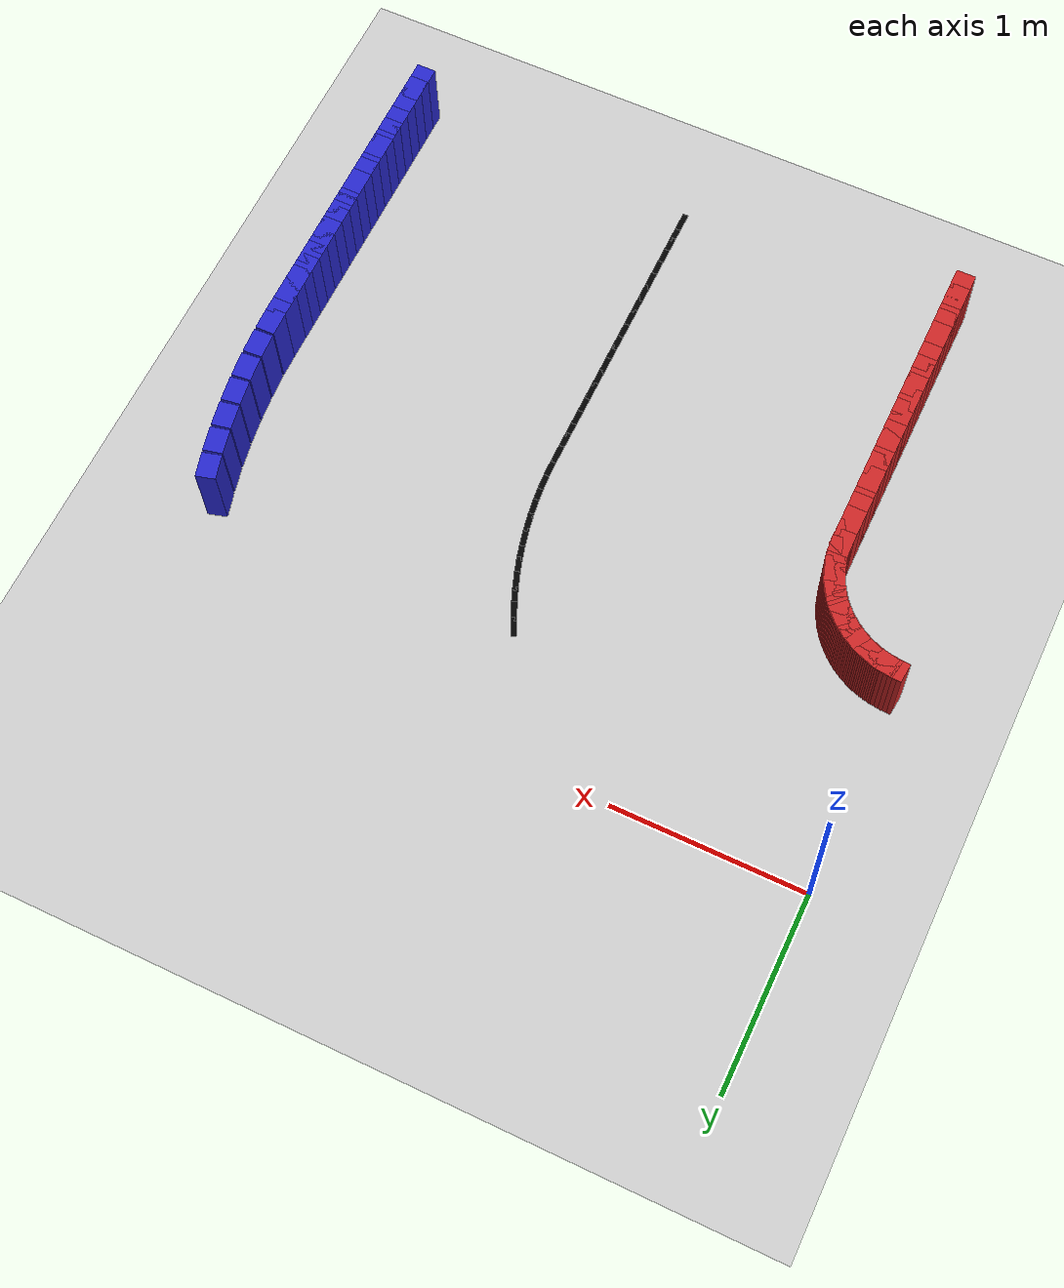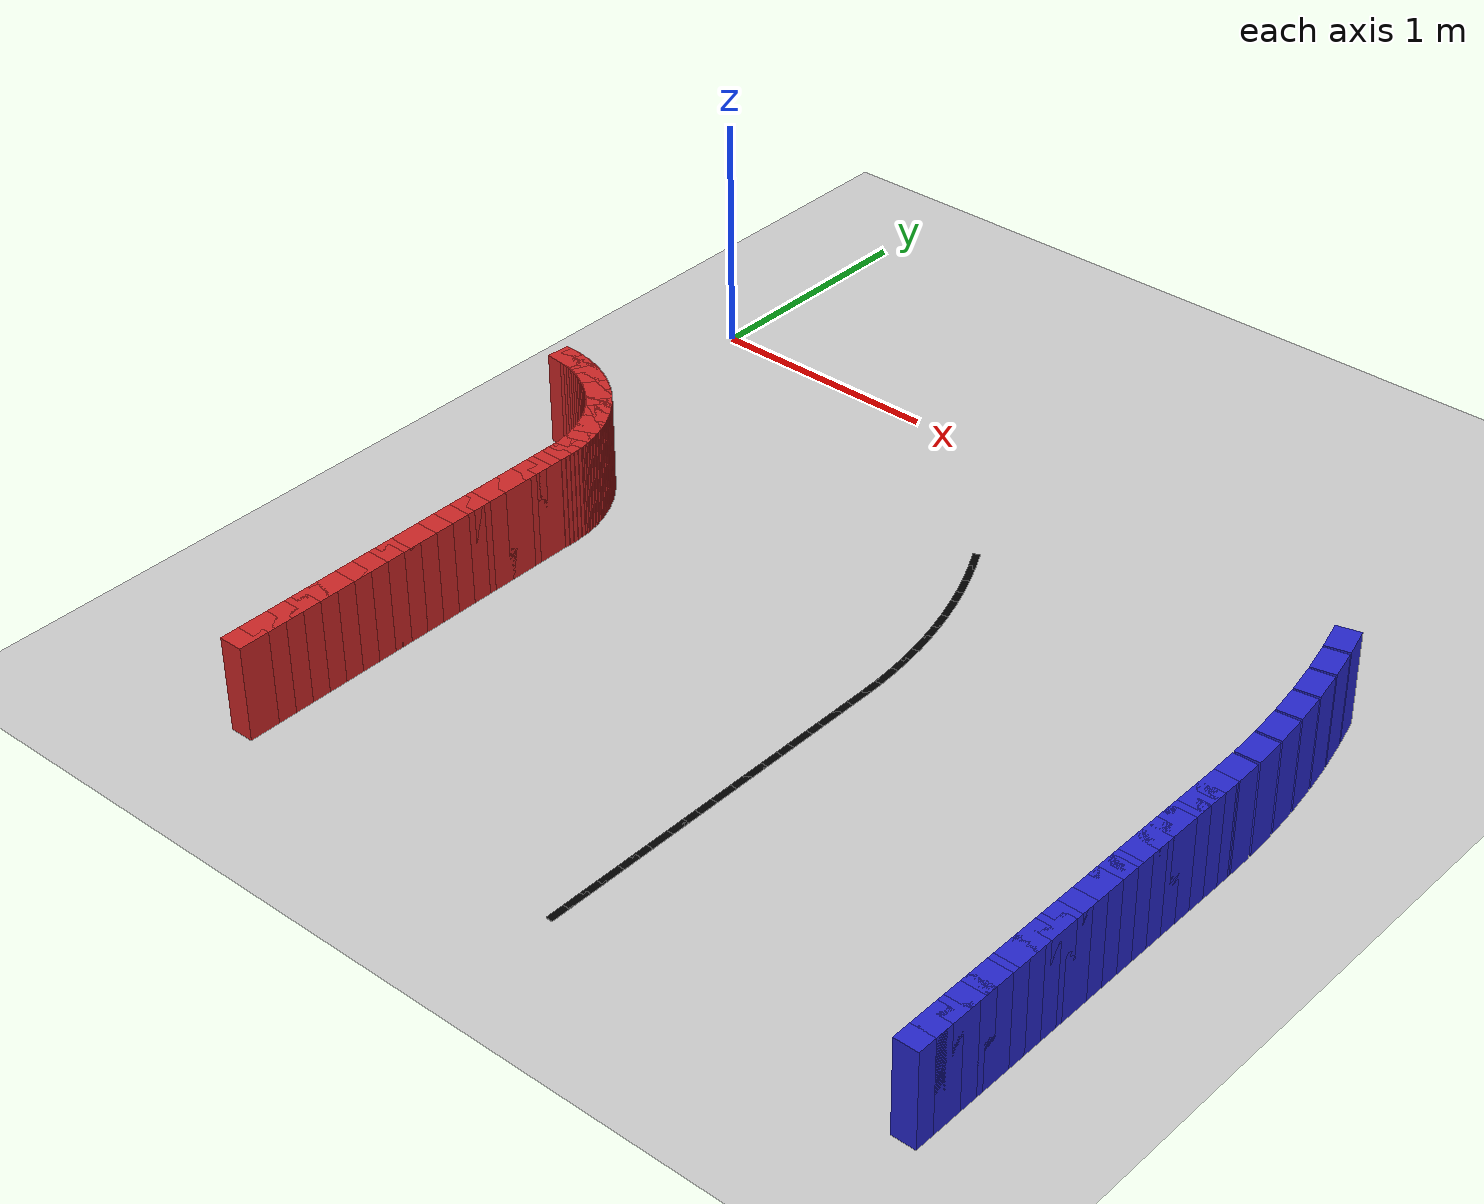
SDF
<sdf version="1.6">
 <world name="new_race_track">
  <include><uri>model://ground_plane</uri></include>
  <include><uri>model://sun</uri></include>
  <model name="iw_255">
   <static>true</static>
   <pose>3.3803 -0.6142 0.200 0 0 -1.3090</pose>
   <link name="l">
    <collision name="c"><geometry><box><size>0.1305 0.1 0.4</size></box></geometry></collision>
    <visual name="v">
     <geometry><box><size>0.1305 0.1 0.4</size></box></geometry>
     <material><ambient>0.15 0.15 0.8 1</ambient><diffuse>0.15 0.15 0.8 1</diffuse></material>
    </visual>
   </link>
  </model>
  <model name="iw_256">
   <static>true</static>
   <pose>3.4141 -0.7511 0.200 0 0 -1.3493</pose>
   <link name="l">
    <collision name="c"><geometry><box><size>0.1305 0.1 0.4</size></box></geometry></collision>
    <visual name="v">
     <geometry><box><size>0.1305 0.1 0.4</size></box></geometry>
     <material><ambient>0.15 0.15 0.8 1</ambient><diffuse>0.15 0.15 0.8 1</diffuse></material>
    </visual>
   </link>
  </model>
  <model name="iw_257">
   <static>true</static>
   <pose>3.4423 -0.8892 0.200 0 0 -1.3896</pose>
   <link name="l">
    <collision name="c"><geometry><box><size>0.1305 0.1 0.4</size></box></geometry></collision>
    <visual name="v">
     <geometry><box><size>0.1305 0.1 0.4</size></box></geometry>
     <material><ambient>0.15 0.15 0.8 1</ambient><diffuse>0.15 0.15 0.8 1</diffuse></material>
    </visual>
   </link>
  </model>
  <model name="iw_258">
   <static>true</static>
   <pose>3.4649 -1.0283 0.200 0 0 -1.4298</pose>
   <link name="l">
    <collision name="c"><geometry><box><size>0.1305 0.1 0.4</size></box></geometry></collision>
    <visual name="v">
     <geometry><box><size>0.1305 0.1 0.4</size></box></geometry>
     <material><ambient>0.15 0.15 0.8 1</ambient><diffuse>0.15 0.15 0.8 1</diffuse></material>
    </visual>
   </link>
  </model>
  <model name="iw_259">
   <static>true</static>
   <pose>3.4819 -1.1682 0.200 0 0 -1.4701</pose>
   <link name="l">
    <collision name="c"><geometry><box><size>0.1305 0.1 0.4</size></box></geometry></collision>
    <visual name="v">
     <geometry><box><size>0.1305 0.1 0.4</size></box></geometry>
     <material><ambient>0.15 0.15 0.8 1</ambient><diffuse>0.15 0.15 0.8 1</diffuse></material>
    </visual>
   </link>
  </model>
  <model name="iw_260">
   <static>true</static>
   <pose>3.4932 -1.3087 0.200 0 0 -1.5104</pose>
   <link name="l">
    <collision name="c"><geometry><box><size>0.1305 0.1 0.4</size></box></geometry></collision>
    <visual name="v">
     <geometry><box><size>0.1305 0.1 0.4</size></box></geometry>
     <material><ambient>0.15 0.15 0.8 1</ambient><diffuse>0.15 0.15 0.8 1</diffuse></material>
    </visual>
   </link>
  </model>
  <model name="iw_261">
   <static>true</static>
   <pose>3.4989 -1.4495 0.200 0 0 -1.5507</pose>
   <link name="l">
    <collision name="c"><geometry><box><size>0.1305 0.1 0.4</size></box></geometry></collision>
    <visual name="v">
     <geometry><box><size>0.1305 0.1 0.4</size></box></geometry>
     <material><ambient>0.15 0.15 0.8 1</ambient><diffuse>0.15 0.15 0.8 1</diffuse></material>
    </visual>
   </link>
  </model>
  <model name="iw_262">
   <static>true</static>
   <pose>3.5000 -1.5600 0.200 0 0 -1.5708</pose>
   <link name="l">
    <collision name="c"><geometry><box><size>0.1300 0.1 0.4</size></box></geometry></collision>
    <visual name="v">
     <geometry><box><size>0.1300 0.1 0.4</size></box></geometry>
     <material><ambient>0.15 0.15 0.8 1</ambient><diffuse>0.15 0.15 0.8 1</diffuse></material>
    </visual>
   </link>
  </model>
  <model name="iw_263">
   <static>true</static>
   <pose>3.5000 -1.6400 0.200 0 0 -1.5708</pose>
   <link name="l">
    <collision name="c"><geometry><box><size>0.1300 0.1 0.4</size></box></geometry></collision>
    <visual name="v">
     <geometry><box><size>0.1300 0.1 0.4</size></box></geometry>
     <material><ambient>0.15 0.15 0.8 1</ambient><diffuse>0.15 0.15 0.8 1</diffuse></material>
    </visual>
   </link>
  </model>
  <model name="iw_264">
   <static>true</static>
   <pose>3.5000 -1.7200 0.200 0 0 -1.5708</pose>
   <link name="l">
    <collision name="c"><geometry><box><size>0.1300 0.1 0.4</size></box></geometry></collision>
    <visual name="v">
     <geometry><box><size>0.1300 0.1 0.4</size></box></geometry>
     <material><ambient>0.15 0.15 0.8 1</ambient><diffuse>0.15 0.15 0.8 1</diffuse></material>
    </visual>
   </link>
  </model>
  <model name="iw_265">
   <static>true</static>
   <pose>3.5000 -1.8000 0.200 0 0 -1.5708</pose>
   <link name="l">
    <collision name="c"><geometry><box><size>0.1300 0.1 0.4</size></box></geometry></collision>
    <visual name="v">
     <geometry><box><size>0.1300 0.1 0.4</size></box></geometry>
     <material><ambient>0.15 0.15 0.8 1</ambient><diffuse>0.15 0.15 0.8 1</diffuse></material>
    </visual>
   </link>
  </model>
  <model name="iw_266">
   <static>true</static>
   <pose>3.5000 -1.8800 0.200 0 0 -1.5708</pose>
   <link name="l">
    <collision name="c"><geometry><box><size>0.1300 0.1 0.4</size></box></geometry></collision>
    <visual name="v">
     <geometry><box><size>0.1300 0.1 0.4</size></box></geometry>
     <material><ambient>0.15 0.15 0.8 1</ambient><diffuse>0.15 0.15 0.8 1</diffuse></material>
    </visual>
   </link>
  </model>
  <model name="iw_267">
   <static>true</static>
   <pose>3.5000 -1.9600 0.200 0 0 -1.5708</pose>
   <link name="l">
    <collision name="c"><geometry><box><size>0.1300 0.1 0.4</size></box></geometry></collision>
    <visual name="v">
     <geometry><box><size>0.1300 0.1 0.4</size></box></geometry>
     <material><ambient>0.15 0.15 0.8 1</ambient><diffuse>0.15 0.15 0.8 1</diffuse></material>
    </visual>
   </link>
  </model>
  <model name="iw_268">
   <static>true</static>
   <pose>3.5000 -2.0400 0.200 0 0 -1.5708</pose>
   <link name="l">
    <collision name="c"><geometry><box><size>0.1300 0.1 0.4</size></box></geometry></collision>
    <visual name="v">
     <geometry><box><size>0.1300 0.1 0.4</size></box></geometry>
     <material><ambient>0.15 0.15 0.8 1</ambient><diffuse>0.15 0.15 0.8 1</diffuse></material>
    </visual>
   </link>
  </model>
  <model name="iw_269">
   <static>true</static>
   <pose>3.5000 -2.1200 0.200 0 0 -1.5708</pose>
   <link name="l">
    <collision name="c"><geometry><box><size>0.1300 0.1 0.4</size></box></geometry></collision>
    <visual name="v">
     <geometry><box><size>0.1300 0.1 0.4</size></box></geometry>
     <material><ambient>0.15 0.15 0.8 1</ambient><diffuse>0.15 0.15 0.8 1</diffuse></material>
    </visual>
   </link>
  </model>
  <model name="iw_270">
   <static>true</static>
   <pose>3.5000 -2.2000 0.200 0 0 -1.5708</pose>
   <link name="l">
    <collision name="c"><geometry><box><size>0.1300 0.1 0.4</size></box></geometry></collision>
    <visual name="v">
     <geometry><box><size>0.1300 0.1 0.4</size></box></geometry>
     <material><ambient>0.15 0.15 0.8 1</ambient><diffuse>0.15 0.15 0.8 1</diffuse></material>
    </visual>
   </link>
  </model>
  <model name="iw_271">
   <static>true</static>
   <pose>3.5000 -2.2800 0.200 0 0 -1.5708</pose>
   <link name="l">
    <collision name="c"><geometry><box><size>0.1300 0.1 0.4</size></box></geometry></collision>
    <visual name="v">
     <geometry><box><size>0.1300 0.1 0.4</size></box></geometry>
     <material><ambient>0.15 0.15 0.8 1</ambient><diffuse>0.15 0.15 0.8 1</diffuse></material>
    </visual>
   </link>
  </model>
  <model name="iw_272">
   <static>true</static>
   <pose>3.5000 -2.3600 0.200 0 0 -1.5708</pose>
   <link name="l">
    <collision name="c"><geometry><box><size>0.1300 0.1 0.4</size></box></geometry></collision>
    <visual name="v">
     <geometry><box><size>0.1300 0.1 0.4</size></box></geometry>
     <material><ambient>0.15 0.15 0.8 1</ambient><diffuse>0.15 0.15 0.8 1</diffuse></material>
    </visual>
   </link>
  </model>
  <model name="iw_273">
   <static>true</static>
   <pose>3.5000 -2.4400 0.200 0 0 -1.5708</pose>
   <link name="l">
    <collision name="c"><geometry><box><size>0.1300 0.1 0.4</size></box></geometry></collision>
    <visual name="v">
     <geometry><box><size>0.1300 0.1 0.4</size></box></geometry>
     <material><ambient>0.15 0.15 0.8 1</ambient><diffuse>0.15 0.15 0.8 1</diffuse></material>
    </visual>
   </link>
  </model>
  <model name="iw_274">
   <static>true</static>
   <pose>3.5000 -2.5200 0.200 0 0 -1.5708</pose>
   <link name="l">
    <collision name="c"><geometry><box><size>0.1300 0.1 0.4</size></box></geometry></collision>
    <visual name="v">
     <geometry><box><size>0.1300 0.1 0.4</size></box></geometry>
     <material><ambient>0.15 0.15 0.8 1</ambient><diffuse>0.15 0.15 0.8 1</diffuse></material>
    </visual>
   </link>
  </model>
  <model name="iw_275">
   <static>true</static>
   <pose>3.5000 -2.6000 0.200 0 0 -1.5708</pose>
   <link name="l">
    <collision name="c"><geometry><box><size>0.1300 0.1 0.4</size></box></geometry></collision>
    <visual name="v">
     <geometry><box><size>0.1300 0.1 0.4</size></box></geometry>
     <material><ambient>0.15 0.15 0.8 1</ambient><diffuse>0.15 0.15 0.8 1</diffuse></material>
    </visual>
   </link>
  </model>
  <model name="iw_276">
   <static>true</static>
   <pose>3.5000 -2.6800 0.200 0 0 -1.5708</pose>
   <link name="l">
    <collision name="c"><geometry><box><size>0.1300 0.1 0.4</size></box></geometry></collision>
    <visual name="v">
     <geometry><box><size>0.1300 0.1 0.4</size></box></geometry>
     <material><ambient>0.15 0.15 0.8 1</ambient><diffuse>0.15 0.15 0.8 1</diffuse></material>
    </visual>
   </link>
  </model>
  <model name="iw_277">
   <static>true</static>
   <pose>3.5000 -2.7600 0.200 0 0 -1.5708</pose>
   <link name="l">
    <collision name="c"><geometry><box><size>0.1300 0.1 0.4</size></box></geometry></collision>
    <visual name="v">
     <geometry><box><size>0.1300 0.1 0.4</size></box></geometry>
     <material><ambient>0.15 0.15 0.8 1</ambient><diffuse>0.15 0.15 0.8 1</diffuse></material>
    </visual>
   </link>
  </model>
  <model name="iw_278">
   <static>true</static>
   <pose>3.5000 -2.8400 0.200 0 0 -1.5708</pose>
   <link name="l">
    <collision name="c"><geometry><box><size>0.1300 0.1 0.4</size></box></geometry></collision>
    <visual name="v">
     <geometry><box><size>0.1300 0.1 0.4</size></box></geometry>
     <material><ambient>0.15 0.15 0.8 1</ambient><diffuse>0.15 0.15 0.8 1</diffuse></material>
    </visual>
   </link>
  </model>
  <model name="iw_279">
   <static>true</static>
   <pose>3.5000 -2.9200 0.200 0 0 -1.5708</pose>
   <link name="l">
    <collision name="c"><geometry><box><size>0.1300 0.1 0.4</size></box></geometry></collision>
    <visual name="v">
     <geometry><box><size>0.1300 0.1 0.4</size></box></geometry>
     <material><ambient>0.15 0.15 0.8 1</ambient><diffuse>0.15 0.15 0.8 1</diffuse></material>
    </visual>
   </link>
  </model>
  <model name="iw_280">
   <static>true</static>
   <pose>3.5000 -3.0000 0.200 0 0 -1.5708</pose>
   <link name="l">
    <collision name="c"><geometry><box><size>0.1300 0.1 0.4</size></box></geometry></collision>
    <visual name="v">
     <geometry><box><size>0.1300 0.1 0.4</size></box></geometry>
     <material><ambient>0.15 0.15 0.8 1</ambient><diffuse>0.15 0.15 0.8 1</diffuse></material>
    </visual>
   </link>
  </model>
  <model name="iw_281">
   <static>true</static>
   <pose>3.5000 -3.0800 0.200 0 0 -1.5708</pose>
   <link name="l">
    <collision name="c"><geometry><box><size>0.1300 0.1 0.4</size></box></geometry></collision>
    <visual name="v">
     <geometry><box><size>0.1300 0.1 0.4</size></box></geometry>
     <material><ambient>0.15 0.15 0.8 1</ambient><diffuse>0.15 0.15 0.8 1</diffuse></material>
    </visual>
   </link>
  </model>
  <model name="ow_225">
   <static>true</static>
   <pose>0.0502 -1.0229 0.200 0 0 -0.1007</pose>
   <link name="l">
    <collision name="c"><geometry><box><size>0.1305 0.1 0.4</size></box></geometry></collision>
    <visual name="v">
     <geometry><box><size>0.1305 0.1 0.4</size></box></geometry>
     <material><ambient>0.8 0.15 0.15 1</ambient><diffuse>0.8 0.15 0.15 1</diffuse></material>
    </visual>
   </link>
  </model>
  <model name="ow_226">
   <static>true</static>
   <pose>0.0702 -1.0254 0.200 0 0 -0.1410</pose>
   <link name="l">
    <collision name="c"><geometry><box><size>0.1305 0.1 0.4</size></box></geometry></collision>
    <visual name="v">
     <geometry><box><size>0.1305 0.1 0.4</size></box></geometry>
     <material><ambient>0.8 0.15 0.15 1</ambient><diffuse>0.8 0.15 0.15 1</diffuse></material>
    </visual>
   </link>
  </model>
  <model name="ow_227">
   <static>true</static>
   <pose>0.0901 -1.0286 0.200 0 0 -0.1812</pose>
   <link name="l">
    <collision name="c"><geometry><box><size>0.1305 0.1 0.4</size></box></geometry></collision>
    <visual name="v">
     <geometry><box><size>0.1305 0.1 0.4</size></box></geometry>
     <material><ambient>0.8 0.15 0.15 1</ambient><diffuse>0.8 0.15 0.15 1</diffuse></material>
    </visual>
   </link>
  </model>
  <model name="ow_228">
   <static>true</static>
   <pose>0.1098 -1.0326 0.200 0 0 -0.2215</pose>
   <link name="l">
    <collision name="c"><geometry><box><size>0.1305 0.1 0.4</size></box></geometry></collision>
    <visual name="v">
     <geometry><box><size>0.1305 0.1 0.4</size></box></geometry>
     <material><ambient>0.8 0.15 0.15 1</ambient><diffuse>0.8 0.15 0.15 1</diffuse></material>
    </visual>
   </link>
  </model>
  <model name="ow_229">
   <static>true</static>
   <pose>0.1293 -1.0374 0.200 0 0 -0.2618</pose>
   <link name="l">
    <collision name="c"><geometry><box><size>0.1305 0.1 0.4</size></box></geometry></collision>
    <visual name="v">
     <geometry><box><size>0.1305 0.1 0.4</size></box></geometry>
     <material><ambient>0.8 0.15 0.15 1</ambient><diffuse>0.8 0.15 0.15 1</diffuse></material>
    </visual>
   </link>
  </model>
  <model name="ow_230">
   <static>true</static>
   <pose>0.1486 -1.0430 0.200 0 0 -0.3021</pose>
   <link name="l">
    <collision name="c"><geometry><box><size>0.1305 0.1 0.4</size></box></geometry></collision>
    <visual name="v">
     <geometry><box><size>0.1305 0.1 0.4</size></box></geometry>
     <material><ambient>0.8 0.15 0.15 1</ambient><diffuse>0.8 0.15 0.15 1</diffuse></material>
    </visual>
   </link>
  </model>
  <model name="ow_231">
   <static>true</static>
   <pose>0.1677 -1.0494 0.200 0 0 -0.3424</pose>
   <link name="l">
    <collision name="c"><geometry><box><size>0.1305 0.1 0.4</size></box></geometry></collision>
    <visual name="v">
     <geometry><box><size>0.1305 0.1 0.4</size></box></geometry>
     <material><ambient>0.8 0.15 0.15 1</ambient><diffuse>0.8 0.15 0.15 1</diffuse></material>
    </visual>
   </link>
  </model>
  <model name="ow_232">
   <static>true</static>
   <pose>0.1865 -1.0565 0.200 0 0 -0.3826</pose>
   <link name="l">
    <collision name="c"><geometry><box><size>0.1305 0.1 0.4</size></box></geometry></collision>
    <visual name="v">
     <geometry><box><size>0.1305 0.1 0.4</size></box></geometry>
     <material><ambient>0.8 0.15 0.15 1</ambient><diffuse>0.8 0.15 0.15 1</diffuse></material>
    </visual>
   </link>
  </model>
  <model name="ow_233">
   <static>true</static>
   <pose>0.2050 -1.0644 0.200 0 0 -0.4229</pose>
   <link name="l">
    <collision name="c"><geometry><box><size>0.1305 0.1 0.4</size></box></geometry></collision>
    <visual name="v">
     <geometry><box><size>0.1305 0.1 0.4</size></box></geometry>
     <material><ambient>0.8 0.15 0.15 1</ambient><diffuse>0.8 0.15 0.15 1</diffuse></material>
    </visual>
   </link>
  </model>
  <model name="ow_234">
   <static>true</static>
   <pose>0.2232 -1.0730 0.200 0 0 -0.4632</pose>
   <link name="l">
    <collision name="c"><geometry><box><size>0.1305 0.1 0.4</size></box></geometry></collision>
    <visual name="v">
     <geometry><box><size>0.1305 0.1 0.4</size></box></geometry>
     <material><ambient>0.8 0.15 0.15 1</ambient><diffuse>0.8 0.15 0.15 1</diffuse></material>
    </visual>
   </link>
  </model>
  <model name="ow_235">
   <static>true</static>
   <pose>0.2410 -1.0824 0.200 0 0 -0.5035</pose>
   <link name="l">
    <collision name="c"><geometry><box><size>0.1305 0.1 0.4</size></box></geometry></collision>
    <visual name="v">
     <geometry><box><size>0.1305 0.1 0.4</size></box></geometry>
     <material><ambient>0.8 0.15 0.15 1</ambient><diffuse>0.8 0.15 0.15 1</diffuse></material>
    </visual>
   </link>
  </model>
  <model name="ow_236">
   <static>true</static>
   <pose>0.2585 -1.0925 0.200 0 0 -0.5437</pose>
   <link name="l">
    <collision name="c"><geometry><box><size>0.1305 0.1 0.4</size></box></geometry></collision>
    <visual name="v">
     <geometry><box><size>0.1305 0.1 0.4</size></box></geometry>
     <material><ambient>0.8 0.15 0.15 1</ambient><diffuse>0.8 0.15 0.15 1</diffuse></material>
    </visual>
   </link>
  </model>
  <model name="ow_237">
   <static>true</static>
   <pose>0.2755 -1.1032 0.200 0 0 -0.5840</pose>
   <link name="l">
    <collision name="c"><geometry><box><size>0.1305 0.1 0.4</size></box></geometry></collision>
    <visual name="v">
     <geometry><box><size>0.1305 0.1 0.4</size></box></geometry>
     <material><ambient>0.8 0.15 0.15 1</ambient><diffuse>0.8 0.15 0.15 1</diffuse></material>
    </visual>
   </link>
  </model>
  <model name="ow_238">
   <static>true</static>
   <pose>0.2920 -1.1146 0.200 0 0 -0.6243</pose>
   <link name="l">
    <collision name="c"><geometry><box><size>0.1305 0.1 0.4</size></box></geometry></collision>
    <visual name="v">
     <geometry><box><size>0.1305 0.1 0.4</size></box></geometry>
     <material><ambient>0.8 0.15 0.15 1</ambient><diffuse>0.8 0.15 0.15 1</diffuse></material>
    </visual>
   </link>
  </model>
  <model name="ow_239">
   <static>true</static>
   <pose>0.3081 -1.1267 0.200 0 0 -0.6646</pose>
   <link name="l">
    <collision name="c"><geometry><box><size>0.1305 0.1 0.4</size></box></geometry></collision>
    <visual name="v">
     <geometry><box><size>0.1305 0.1 0.4</size></box></geometry>
     <material><ambient>0.8 0.15 0.15 1</ambient><diffuse>0.8 0.15 0.15 1</diffuse></material>
    </visual>
   </link>
  </model>
  <model name="ow_240">
   <static>true</static>
   <pose>0.3237 -1.1395 0.200 0 0 -0.7048</pose>
   <link name="l">
    <collision name="c"><geometry><box><size>0.1305 0.1 0.4</size></box></geometry></collision>
    <visual name="v">
     <geometry><box><size>0.1305 0.1 0.4</size></box></geometry>
     <material><ambient>0.8 0.15 0.15 1</ambient><diffuse>0.8 0.15 0.15 1</diffuse></material>
    </visual>
   </link>
  </model>
  <model name="ow_241">
   <static>true</static>
   <pose>0.3388 -1.1528 0.200 0 0 -0.7451</pose>
   <link name="l">
    <collision name="c"><geometry><box><size>0.1305 0.1 0.4</size></box></geometry></collision>
    <visual name="v">
     <geometry><box><size>0.1305 0.1 0.4</size></box></geometry>
     <material><ambient>0.8 0.15 0.15 1</ambient><diffuse>0.8 0.15 0.15 1</diffuse></material>
    </visual>
   </link>
  </model>
  <model name="ow_242">
   <static>true</static>
   <pose>0.3533 -1.1667 0.200 0 0 -0.7854</pose>
   <link name="l">
    <collision name="c"><geometry><box><size>0.1305 0.1 0.4</size></box></geometry></collision>
    <visual name="v">
     <geometry><box><size>0.1305 0.1 0.4</size></box></geometry>
     <material><ambient>0.8 0.15 0.15 1</ambient><diffuse>0.8 0.15 0.15 1</diffuse></material>
    </visual>
   </link>
  </model>
  <model name="ow_243">
   <static>true</static>
   <pose>0.3672 -1.1812 0.200 0 0 -0.8257</pose>
   <link name="l">
    <collision name="c"><geometry><box><size>0.1305 0.1 0.4</size></box></geometry></collision>
    <visual name="v">
     <geometry><box><size>0.1305 0.1 0.4</size></box></geometry>
     <material><ambient>0.8 0.15 0.15 1</ambient><diffuse>0.8 0.15 0.15 1</diffuse></material>
    </visual>
   </link>
  </model>
  <model name="ow_244">
   <static>true</static>
   <pose>0.3805 -1.1963 0.200 0 0 -0.8660</pose>
   <link name="l">
    <collision name="c"><geometry><box><size>0.1305 0.1 0.4</size></box></geometry></collision>
    <visual name="v">
     <geometry><box><size>0.1305 0.1 0.4</size></box></geometry>
     <material><ambient>0.8 0.15 0.15 1</ambient><diffuse>0.8 0.15 0.15 1</diffuse></material>
    </visual>
   </link>
  </model>
  <model name="ow_245">
   <static>true</static>
   <pose>0.3933 -1.2119 0.200 0 0 -0.9062</pose>
   <link name="l">
    <collision name="c"><geometry><box><size>0.1305 0.1 0.4</size></box></geometry></collision>
    <visual name="v">
     <geometry><box><size>0.1305 0.1 0.4</size></box></geometry>
     <material><ambient>0.8 0.15 0.15 1</ambient><diffuse>0.8 0.15 0.15 1</diffuse></material>
    </visual>
   </link>
  </model>
  <model name="ow_246">
   <static>true</static>
   <pose>0.4054 -1.2280 0.200 0 0 -0.9465</pose>
   <link name="l">
    <collision name="c"><geometry><box><size>0.1305 0.1 0.4</size></box></geometry></collision>
    <visual name="v">
     <geometry><box><size>0.1305 0.1 0.4</size></box></geometry>
     <material><ambient>0.8 0.15 0.15 1</ambient><diffuse>0.8 0.15 0.15 1</diffuse></material>
    </visual>
   </link>
  </model>
  <model name="ow_247">
   <static>true</static>
   <pose>0.4168 -1.2445 0.200 0 0 -0.9868</pose>
   <link name="l">
    <collision name="c"><geometry><box><size>0.1305 0.1 0.4</size></box></geometry></collision>
    <visual name="v">
     <geometry><box><size>0.1305 0.1 0.4</size></box></geometry>
     <material><ambient>0.8 0.15 0.15 1</ambient><diffuse>0.8 0.15 0.15 1</diffuse></material>
    </visual>
   </link>
  </model>
  <model name="ow_248">
   <static>true</static>
   <pose>0.4275 -1.2615 0.200 0 0 -1.0271</pose>
   <link name="l">
    <collision name="c"><geometry><box><size>0.1305 0.1 0.4</size></box></geometry></collision>
    <visual name="v">
     <geometry><box><size>0.1305 0.1 0.4</size></box></geometry>
     <material><ambient>0.8 0.15 0.15 1</ambient><diffuse>0.8 0.15 0.15 1</diffuse></material>
    </visual>
   </link>
  </model>
  <model name="ow_249">
   <static>true</static>
   <pose>0.4376 -1.2790 0.200 0 0 -1.0673</pose>
   <link name="l">
    <collision name="c"><geometry><box><size>0.1305 0.1 0.4</size></box></geometry></collision>
    <visual name="v">
     <geometry><box><size>0.1305 0.1 0.4</size></box></geometry>
     <material><ambient>0.8 0.15 0.15 1</ambient><diffuse>0.8 0.15 0.15 1</diffuse></material>
    </visual>
   </link>
  </model>
  <model name="ow_250">
   <static>true</static>
   <pose>0.4470 -1.2968 0.200 0 0 -1.1076</pose>
   <link name="l">
    <collision name="c"><geometry><box><size>0.1305 0.1 0.4</size></box></geometry></collision>
    <visual name="v">
     <geometry><box><size>0.1305 0.1 0.4</size></box></geometry>
     <material><ambient>0.8 0.15 0.15 1</ambient><diffuse>0.8 0.15 0.15 1</diffuse></material>
    </visual>
   </link>
  </model>
  <model name="ow_251">
   <static>true</static>
   <pose>0.4556 -1.3150 0.200 0 0 -1.1479</pose>
   <link name="l">
    <collision name="c"><geometry><box><size>0.1305 0.1 0.4</size></box></geometry></collision>
    <visual name="v">
     <geometry><box><size>0.1305 0.1 0.4</size></box></geometry>
     <material><ambient>0.8 0.15 0.15 1</ambient><diffuse>0.8 0.15 0.15 1</diffuse></material>
    </visual>
   </link>
  </model>
  <model name="ow_252">
   <static>true</static>
   <pose>0.4635 -1.3335 0.200 0 0 -1.1882</pose>
   <link name="l">
    <collision name="c"><geometry><box><size>0.1305 0.1 0.4</size></box></geometry></collision>
    <visual name="v">
     <geometry><box><size>0.1305 0.1 0.4</size></box></geometry>
     <material><ambient>0.8 0.15 0.15 1</ambient><diffuse>0.8 0.15 0.15 1</diffuse></material>
    </visual>
   </link>
  </model>
  <model name="ow_253">
   <static>true</static>
   <pose>0.4706 -1.3523 0.200 0 0 -1.2284</pose>
   <link name="l">
    <collision name="c"><geometry><box><size>0.1305 0.1 0.4</size></box></geometry></collision>
    <visual name="v">
     <geometry><box><size>0.1305 0.1 0.4</size></box></geometry>
     <material><ambient>0.8 0.15 0.15 1</ambient><diffuse>0.8 0.15 0.15 1</diffuse></material>
    </visual>
   </link>
  </model>
  <model name="ow_254">
   <static>true</static>
   <pose>0.4770 -1.3714 0.200 0 0 -1.2687</pose>
   <link name="l">
    <collision name="c"><geometry><box><size>0.1305 0.1 0.4</size></box></geometry></collision>
    <visual name="v">
     <geometry><box><size>0.1305 0.1 0.4</size></box></geometry>
     <material><ambient>0.8 0.15 0.15 1</ambient><diffuse>0.8 0.15 0.15 1</diffuse></material>
    </visual>
   </link>
  </model>
  <model name="ow_255">
   <static>true</static>
   <pose>0.4826 -1.3907 0.200 0 0 -1.3090</pose>
   <link name="l">
    <collision name="c"><geometry><box><size>0.1305 0.1 0.4</size></box></geometry></collision>
    <visual name="v">
     <geometry><box><size>0.1305 0.1 0.4</size></box></geometry>
     <material><ambient>0.8 0.15 0.15 1</ambient><diffuse>0.8 0.15 0.15 1</diffuse></material>
    </visual>
   </link>
  </model>
  <model name="ow_256">
   <static>true</static>
   <pose>0.4874 -1.4102 0.200 0 0 -1.3493</pose>
   <link name="l">
    <collision name="c"><geometry><box><size>0.1305 0.1 0.4</size></box></geometry></collision>
    <visual name="v">
     <geometry><box><size>0.1305 0.1 0.4</size></box></geometry>
     <material><ambient>0.8 0.15 0.15 1</ambient><diffuse>0.8 0.15 0.15 1</diffuse></material>
    </visual>
   </link>
  </model>
  <model name="ow_257">
   <static>true</static>
   <pose>0.4914 -1.4299 0.200 0 0 -1.3896</pose>
   <link name="l">
    <collision name="c"><geometry><box><size>0.1305 0.1 0.4</size></box></geometry></collision>
    <visual name="v">
     <geometry><box><size>0.1305 0.1 0.4</size></box></geometry>
     <material><ambient>0.8 0.15 0.15 1</ambient><diffuse>0.8 0.15 0.15 1</diffuse></material>
    </visual>
   </link>
  </model>
  <model name="ow_258">
   <static>true</static>
   <pose>0.4946 -1.4498 0.200 0 0 -1.4298</pose>
   <link name="l">
    <collision name="c"><geometry><box><size>0.1305 0.1 0.4</size></box></geometry></collision>
    <visual name="v">
     <geometry><box><size>0.1305 0.1 0.4</size></box></geometry>
     <material><ambient>0.8 0.15 0.15 1</ambient><diffuse>0.8 0.15 0.15 1</diffuse></material>
    </visual>
   </link>
  </model>
  <model name="ow_259">
   <static>true</static>
   <pose>0.4971 -1.4698 0.200 0 0 -1.4701</pose>
   <link name="l">
    <collision name="c"><geometry><box><size>0.1305 0.1 0.4</size></box></geometry></collision>
    <visual name="v">
     <geometry><box><size>0.1305 0.1 0.4</size></box></geometry>
     <material><ambient>0.8 0.15 0.15 1</ambient><diffuse>0.8 0.15 0.15 1</diffuse></material>
    </visual>
   </link>
  </model>
  <model name="ow_260">
   <static>true</static>
   <pose>0.4987 -1.4898 0.200 0 0 -1.5104</pose>
   <link name="l">
    <collision name="c"><geometry><box><size>0.1305 0.1 0.4</size></box></geometry></collision>
    <visual name="v">
     <geometry><box><size>0.1305 0.1 0.4</size></box></geometry>
     <material><ambient>0.8 0.15 0.15 1</ambient><diffuse>0.8 0.15 0.15 1</diffuse></material>
    </visual>
   </link>
  </model>
  <model name="ow_261">
   <static>true</static>
   <pose>0.4995 -1.5099 0.200 0 0 -1.5507</pose>
   <link name="l">
    <collision name="c"><geometry><box><size>0.1305 0.1 0.4</size></box></geometry></collision>
    <visual name="v">
     <geometry><box><size>0.1305 0.1 0.4</size></box></geometry>
     <material><ambient>0.8 0.15 0.15 1</ambient><diffuse>0.8 0.15 0.15 1</diffuse></material>
    </visual>
   </link>
  </model>
  <model name="ow_262">
   <static>true</static>
   <pose>0.5000 -1.5600 0.200 0 0 -1.5708</pose>
   <link name="l">
    <collision name="c"><geometry><box><size>0.1300 0.1 0.4</size></box></geometry></collision>
    <visual name="v">
     <geometry><box><size>0.1300 0.1 0.4</size></box></geometry>
     <material><ambient>0.8 0.15 0.15 1</ambient><diffuse>0.8 0.15 0.15 1</diffuse></material>
    </visual>
   </link>
  </model>
  <model name="ow_263">
   <static>true</static>
   <pose>0.5000 -1.6400 0.200 0 0 -1.5708</pose>
   <link name="l">
    <collision name="c"><geometry><box><size>0.1300 0.1 0.4</size></box></geometry></collision>
    <visual name="v">
     <geometry><box><size>0.1300 0.1 0.4</size></box></geometry>
     <material><ambient>0.8 0.15 0.15 1</ambient><diffuse>0.8 0.15 0.15 1</diffuse></material>
    </visual>
   </link>
  </model>
  <model name="ow_264">
   <static>true</static>
   <pose>0.5000 -1.7200 0.200 0 0 -1.5708</pose>
   <link name="l">
    <collision name="c"><geometry><box><size>0.1300 0.1 0.4</size></box></geometry></collision>
    <visual name="v">
     <geometry><box><size>0.1300 0.1 0.4</size></box></geometry>
     <material><ambient>0.8 0.15 0.15 1</ambient><diffuse>0.8 0.15 0.15 1</diffuse></material>
    </visual>
   </link>
  </model>
  <model name="ow_265">
   <static>true</static>
   <pose>0.5000 -1.8000 0.200 0 0 -1.5708</pose>
   <link name="l">
    <collision name="c"><geometry><box><size>0.1300 0.1 0.4</size></box></geometry></collision>
    <visual name="v">
     <geometry><box><size>0.1300 0.1 0.4</size></box></geometry>
     <material><ambient>0.8 0.15 0.15 1</ambient><diffuse>0.8 0.15 0.15 1</diffuse></material>
    </visual>
   </link>
  </model>
  <model name="ow_266">
   <static>true</static>
   <pose>0.5000 -1.8800 0.200 0 0 -1.5708</pose>
   <link name="l">
    <collision name="c"><geometry><box><size>0.1300 0.1 0.4</size></box></geometry></collision>
    <visual name="v">
     <geometry><box><size>0.1300 0.1 0.4</size></box></geometry>
     <material><ambient>0.8 0.15 0.15 1</ambient><diffuse>0.8 0.15 0.15 1</diffuse></material>
    </visual>
   </link>
  </model>
  <model name="ow_267">
   <static>true</static>
   <pose>0.5000 -1.9600 0.200 0 0 -1.5708</pose>
   <link name="l">
    <collision name="c"><geometry><box><size>0.1300 0.1 0.4</size></box></geometry></collision>
    <visual name="v">
     <geometry><box><size>0.1300 0.1 0.4</size></box></geometry>
     <material><ambient>0.8 0.15 0.15 1</ambient><diffuse>0.8 0.15 0.15 1</diffuse></material>
    </visual>
   </link>
  </model>
  <model name="ow_268">
   <static>true</static>
   <pose>0.5000 -2.0400 0.200 0 0 -1.5708</pose>
   <link name="l">
    <collision name="c"><geometry><box><size>0.1300 0.1 0.4</size></box></geometry></collision>
    <visual name="v">
     <geometry><box><size>0.1300 0.1 0.4</size></box></geometry>
     <material><ambient>0.8 0.15 0.15 1</ambient><diffuse>0.8 0.15 0.15 1</diffuse></material>
    </visual>
   </link>
  </model>
  <model name="ow_269">
   <static>true</static>
   <pose>0.5000 -2.1200 0.200 0 0 -1.5708</pose>
   <link name="l">
    <collision name="c"><geometry><box><size>0.1300 0.1 0.4</size></box></geometry></collision>
    <visual name="v">
     <geometry><box><size>0.1300 0.1 0.4</size></box></geometry>
     <material><ambient>0.8 0.15 0.15 1</ambient><diffuse>0.8 0.15 0.15 1</diffuse></material>
    </visual>
   </link>
  </model>
  <model name="ow_270">
   <static>true</static>
   <pose>0.5000 -2.2000 0.200 0 0 -1.5708</pose>
   <link name="l">
    <collision name="c"><geometry><box><size>0.1300 0.1 0.4</size></box></geometry></collision>
    <visual name="v">
     <geometry><box><size>0.1300 0.1 0.4</size></box></geometry>
     <material><ambient>0.8 0.15 0.15 1</ambient><diffuse>0.8 0.15 0.15 1</diffuse></material>
    </visual>
   </link>
  </model>
  <model name="ow_271">
   <static>true</static>
   <pose>0.5000 -2.2800 0.200 0 0 -1.5708</pose>
   <link name="l">
    <collision name="c"><geometry><box><size>0.1300 0.1 0.4</size></box></geometry></collision>
    <visual name="v">
     <geometry><box><size>0.1300 0.1 0.4</size></box></geometry>
     <material><ambient>0.8 0.15 0.15 1</ambient><diffuse>0.8 0.15 0.15 1</diffuse></material>
    </visual>
   </link>
  </model>
  <model name="ow_272">
   <static>true</static>
   <pose>0.5000 -2.3600 0.200 0 0 -1.5708</pose>
   <link name="l">
    <collision name="c"><geometry><box><size>0.1300 0.1 0.4</size></box></geometry></collision>
    <visual name="v">
     <geometry><box><size>0.1300 0.1 0.4</size></box></geometry>
     <material><ambient>0.8 0.15 0.15 1</ambient><diffuse>0.8 0.15 0.15 1</diffuse></material>
    </visual>
   </link>
  </model>
  <model name="ow_273">
   <static>true</static>
   <pose>0.5000 -2.4400 0.200 0 0 -1.5708</pose>
   <link name="l">
    <collision name="c"><geometry><box><size>0.1300 0.1 0.4</size></box></geometry></collision>
    <visual name="v">
     <geometry><box><size>0.1300 0.1 0.4</size></box></geometry>
     <material><ambient>0.8 0.15 0.15 1</ambient><diffuse>0.8 0.15 0.15 1</diffuse></material>
    </visual>
   </link>
  </model>
  <model name="ow_274">
   <static>true</static>
   <pose>0.5000 -2.5200 0.200 0 0 -1.5708</pose>
   <link name="l">
    <collision name="c"><geometry><box><size>0.1300 0.1 0.4</size></box></geometry></collision>
    <visual name="v">
     <geometry><box><size>0.1300 0.1 0.4</size></box></geometry>
     <material><ambient>0.8 0.15 0.15 1</ambient><diffuse>0.8 0.15 0.15 1</diffuse></material>
    </visual>
   </link>
  </model>
  <model name="ow_275">
   <static>true</static>
   <pose>0.5000 -2.6000 0.200 0 0 -1.5708</pose>
   <link name="l">
    <collision name="c"><geometry><box><size>0.1300 0.1 0.4</size></box></geometry></collision>
    <visual name="v">
     <geometry><box><size>0.1300 0.1 0.4</size></box></geometry>
     <material><ambient>0.8 0.15 0.15 1</ambient><diffuse>0.8 0.15 0.15 1</diffuse></material>
    </visual>
   </link>
  </model>
  <model name="ow_276">
   <static>true</static>
   <pose>0.5000 -2.6800 0.200 0 0 -1.5708</pose>
   <link name="l">
    <collision name="c"><geometry><box><size>0.1300 0.1 0.4</size></box></geometry></collision>
    <visual name="v">
     <geometry><box><size>0.1300 0.1 0.4</size></box></geometry>
     <material><ambient>0.8 0.15 0.15 1</ambient><diffuse>0.8 0.15 0.15 1</diffuse></material>
    </visual>
   </link>
  </model>
  <model name="ow_277">
   <static>true</static>
   <pose>0.5000 -2.7600 0.200 0 0 -1.5708</pose>
   <link name="l">
    <collision name="c"><geometry><box><size>0.1300 0.1 0.4</size></box></geometry></collision>
    <visual name="v">
     <geometry><box><size>0.1300 0.1 0.4</size></box></geometry>
     <material><ambient>0.8 0.15 0.15 1</ambient><diffuse>0.8 0.15 0.15 1</diffuse></material>
    </visual>
   </link>
  </model>
  <model name="ow_278">
   <static>true</static>
   <pose>0.5000 -2.8400 0.200 0 0 -1.5708</pose>
   <link name="l">
    <collision name="c"><geometry><box><size>0.1300 0.1 0.4</size></box></geometry></collision>
    <visual name="v">
     <geometry><box><size>0.1300 0.1 0.4</size></box></geometry>
     <material><ambient>0.8 0.15 0.15 1</ambient><diffuse>0.8 0.15 0.15 1</diffuse></material>
    </visual>
   </link>
  </model>
  <model name="ow_279">
   <static>true</static>
   <pose>0.5000 -2.9200 0.200 0 0 -1.5708</pose>
   <link name="l">
    <collision name="c"><geometry><box><size>0.1300 0.1 0.4</size></box></geometry></collision>
    <visual name="v">
     <geometry><box><size>0.1300 0.1 0.4</size></box></geometry>
     <material><ambient>0.8 0.15 0.15 1</ambient><diffuse>0.8 0.15 0.15 1</diffuse></material>
    </visual>
   </link>
  </model>
  <model name="ow_280">
   <static>true</static>
   <pose>0.5000 -3.0000 0.200 0 0 -1.5708</pose>
   <link name="l">
    <collision name="c"><geometry><box><size>0.1300 0.1 0.4</size></box></geometry></collision>
    <visual name="v">
     <geometry><box><size>0.1300 0.1 0.4</size></box></geometry>
     <material><ambient>0.8 0.15 0.15 1</ambient><diffuse>0.8 0.15 0.15 1</diffuse></material>
    </visual>
   </link>
  </model>
  <model name="ow_281">
   <static>true</static>
   <pose>0.5000 -3.0800 0.200 0 0 -1.5708</pose>
   <link name="l">
    <collision name="c"><geometry><box><size>0.1300 0.1 0.4</size></box></geometry></collision>
    <visual name="v">
     <geometry><box><size>0.1300 0.1 0.4</size></box></geometry>
     <material><ambient>0.8 0.15 0.15 1</ambient><diffuse>0.8 0.15 0.15 1</diffuse></material>
    </visual>
   </link>
  </model>
  <model name="line_250">
   <static>true</static>
   <pose>1.7889 -0.6266 0.002 0 0 -1.1076</pose>
   <link name="l">
    <visual name="v">
     <geometry><box><size>0.1005 0.03 0.002</size></box></geometry>
     <material><ambient>0 0 0 1</ambient><diffuse>0 0 0 1</diffuse></material>
    </visual>
   </link>
  </model>
  <model name="line_251">
   <static>true</static>
   <pose>1.8234 -0.6993 0.002 0 0 -1.1479</pose>
   <link name="l">
    <visual name="v">
     <geometry><box><size>0.1005 0.03 0.002</size></box></geometry>
     <material><ambient>0 0 0 1</ambient><diffuse>0 0 0 1</diffuse></material>
    </visual>
   </link>
  </model>
  <model name="line_252">
   <static>true</static>
   <pose>1.8550 -0.7734 0.002 0 0 -1.1882</pose>
   <link name="l">
    <visual name="v">
     <geometry><box><size>0.1005 0.03 0.002</size></box></geometry>
     <material><ambient>0 0 0 1</ambient><diffuse>0 0 0 1</diffuse></material>
    </visual>
   </link>
  </model>
  <model name="line_253">
   <static>true</static>
   <pose>1.8836 -0.8487 0.002 0 0 -1.2284</pose>
   <link name="l">
    <visual name="v">
     <geometry><box><size>0.1005 0.03 0.002</size></box></geometry>
     <material><ambient>0 0 0 1</ambient><diffuse>0 0 0 1</diffuse></material>
    </visual>
   </link>
  </model>
  <model name="line_254">
   <static>true</static>
   <pose>1.9091 -0.9251 0.002 0 0 -1.2687</pose>
   <link name="l">
    <visual name="v">
     <geometry><box><size>0.1005 0.03 0.002</size></box></geometry>
     <material><ambient>0 0 0 1</ambient><diffuse>0 0 0 1</diffuse></material>
    </visual>
   </link>
  </model>
  <model name="line_255">
   <static>true</static>
   <pose>1.9315 -1.0025 0.002 0 0 -1.3090</pose>
   <link name="l">
    <visual name="v">
     <geometry><box><size>0.1005 0.03 0.002</size></box></geometry>
     <material><ambient>0 0 0 1</ambient><diffuse>0 0 0 1</diffuse></material>
    </visual>
   </link>
  </model>
  <model name="line_256">
   <static>true</static>
   <pose>1.9507 -1.0807 0.002 0 0 -1.3493</pose>
   <link name="l">
    <visual name="v">
     <geometry><box><size>0.1005 0.03 0.002</size></box></geometry>
     <material><ambient>0 0 0 1</ambient><diffuse>0 0 0 1</diffuse></material>
    </visual>
   </link>
  </model>
  <model name="line_257">
   <static>true</static>
   <pose>1.9668 -1.1596 0.002 0 0 -1.3896</pose>
   <link name="l">
    <visual name="v">
     <geometry><box><size>0.1005 0.03 0.002</size></box></geometry>
     <material><ambient>0 0 0 1</ambient><diffuse>0 0 0 1</diffuse></material>
    </visual>
   </link>
  </model>
  <model name="line_258">
   <static>true</static>
   <pose>1.9798 -1.2391 0.002 0 0 -1.4298</pose>
   <link name="l">
    <visual name="v">
     <geometry><box><size>0.1005 0.03 0.002</size></box></geometry>
     <material><ambient>0 0 0 1</ambient><diffuse>0 0 0 1</diffuse></material>
    </visual>
   </link>
  </model>
  <model name="line_259">
   <static>true</static>
   <pose>1.9895 -1.3190 0.002 0 0 -1.4701</pose>
   <link name="l">
    <visual name="v">
     <geometry><box><size>0.1005 0.03 0.002</size></box></geometry>
     <material><ambient>0 0 0 1</ambient><diffuse>0 0 0 1</diffuse></material>
    </visual>
   </link>
  </model>
  <model name="line_260">
   <static>true</static>
   <pose>1.9959 -1.3993 0.002 0 0 -1.5104</pose>
   <link name="l">
    <visual name="v">
     <geometry><box><size>0.1005 0.03 0.002</size></box></geometry>
     <material><ambient>0 0 0 1</ambient><diffuse>0 0 0 1</diffuse></material>
    </visual>
   </link>
  </model>
  <model name="line_261">
   <static>true</static>
   <pose>1.9992 -1.4797 0.002 0 0 -1.5507</pose>
   <link name="l">
    <visual name="v">
     <geometry><box><size>0.1005 0.03 0.002</size></box></geometry>
     <material><ambient>0 0 0 1</ambient><diffuse>0 0 0 1</diffuse></material>
    </visual>
   </link>
  </model>
  <model name="line_262">
   <static>true</static>
   <pose>2.0000 -1.5600 0.002 0 0 -1.5708</pose>
   <link name="l">
    <visual name="v">
     <geometry><box><size>0.1000 0.03 0.002</size></box></geometry>
     <material><ambient>0 0 0 1</ambient><diffuse>0 0 0 1</diffuse></material>
    </visual>
   </link>
  </model>
  <model name="line_263">
   <static>true</static>
   <pose>2.0000 -1.6400 0.002 0 0 -1.5708</pose>
   <link name="l">
    <visual name="v">
     <geometry><box><size>0.1000 0.03 0.002</size></box></geometry>
     <material><ambient>0 0 0 1</ambient><diffuse>0 0 0 1</diffuse></material>
    </visual>
   </link>
  </model>
  <model name="line_264">
   <static>true</static>
   <pose>2.0000 -1.7200 0.002 0 0 -1.5708</pose>
   <link name="l">
    <visual name="v">
     <geometry><box><size>0.1000 0.03 0.002</size></box></geometry>
     <material><ambient>0 0 0 1</ambient><diffuse>0 0 0 1</diffuse></material>
    </visual>
   </link>
  </model>
  <model name="line_265">
   <static>true</static>
   <pose>2.0000 -1.8000 0.002 0 0 -1.5708</pose>
   <link name="l">
    <visual name="v">
     <geometry><box><size>0.1000 0.03 0.002</size></box></geometry>
     <material><ambient>0 0 0 1</ambient><diffuse>0 0 0 1</diffuse></material>
    </visual>
   </link>
  </model>
  <model name="line_266">
   <static>true</static>
   <pose>2.0000 -1.8800 0.002 0 0 -1.5708</pose>
   <link name="l">
    <visual name="v">
     <geometry><box><size>0.1000 0.03 0.002</size></box></geometry>
     <material><ambient>0 0 0 1</ambient><diffuse>0 0 0 1</diffuse></material>
    </visual>
   </link>
  </model>
  <model name="line_267">
   <static>true</static>
   <pose>2.0000 -1.9600 0.002 0 0 -1.5708</pose>
   <link name="l">
    <visual name="v">
     <geometry><box><size>0.1000 0.03 0.002</size></box></geometry>
     <material><ambient>0 0 0 1</ambient><diffuse>0 0 0 1</diffuse></material>
    </visual>
   </link>
  </model>
  <model name="line_268">
   <static>true</static>
   <pose>2.0000 -2.0400 0.002 0 0 -1.5708</pose>
   <link name="l">
    <visual name="v">
     <geometry><box><size>0.1000 0.03 0.002</size></box></geometry>
     <material><ambient>0 0 0 1</ambient><diffuse>0 0 0 1</diffuse></material>
    </visual>
   </link>
  </model>
  <model name="line_269">
   <static>true</static>
   <pose>2.0000 -2.1200 0.002 0 0 -1.5708</pose>
   <link name="l">
    <visual name="v">
     <geometry><box><size>0.1000 0.03 0.002</size></box></geometry>
     <material><ambient>0 0 0 1</ambient><diffuse>0 0 0 1</diffuse></material>
    </visual>
   </link>
  </model>
  <model name="line_270">
   <static>true</static>
   <pose>2.0000 -2.2000 0.002 0 0 -1.5708</pose>
   <link name="l">
    <visual name="v">
     <geometry><box><size>0.1000 0.03 0.002</size></box></geometry>
     <material><ambient>0 0 0 1</ambient><diffuse>0 0 0 1</diffuse></material>
    </visual>
   </link>
  </model>
  <model name="line_271">
   <static>true</static>
   <pose>2.0000 -2.2800 0.002 0 0 -1.5708</pose>
   <link name="l">
    <visual name="v">
     <geometry><box><size>0.1000 0.03 0.002</size></box></geometry>
     <material><ambient>0 0 0 1</ambient><diffuse>0 0 0 1</diffuse></material>
    </visual>
   </link>
  </model>
  <model name="line_272">
   <static>true</static>
   <pose>2.0000 -2.3600 0.002 0 0 -1.5708</pose>
   <link name="l">
    <visual name="v">
     <geometry><box><size>0.1000 0.03 0.002</size></box></geometry>
     <material><ambient>0 0 0 1</ambient><diffuse>0 0 0 1</diffuse></material>
    </visual>
   </link>
  </model>
  <model name="line_273">
   <static>true</static>
   <pose>2.0000 -2.4400 0.002 0 0 -1.5708</pose>
   <link name="l">
    <visual name="v">
     <geometry><box><size>0.1000 0.03 0.002</size></box></geometry>
     <material><ambient>0 0 0 1</ambient><diffuse>0 0 0 1</diffuse></material>
    </visual>
   </link>
  </model>
  <model name="line_274">
   <static>true</static>
   <pose>2.0000 -2.5200 0.002 0 0 -1.5708</pose>
   <link name="l">
    <visual name="v">
     <geometry><box><size>0.1000 0.03 0.002</size></box></geometry>
     <material><ambient>0 0 0 1</ambient><diffuse>0 0 0 1</diffuse></material>
    </visual>
   </link>
  </model>
  <model name="line_275">
   <static>true</static>
   <pose>2.0000 -2.6000 0.002 0 0 -1.5708</pose>
   <link name="l">
    <visual name="v">
     <geometry><box><size>0.1000 0.03 0.002</size></box></geometry>
     <material><ambient>0 0 0 1</ambient><diffuse>0 0 0 1</diffuse></material>
    </visual>
   </link>
  </model>
  <model name="line_276">
   <static>true</static>
   <pose>2.0000 -2.6800 0.002 0 0 -1.5708</pose>
   <link name="l">
    <visual name="v">
     <geometry><box><size>0.1000 0.03 0.002</size></box></geometry>
     <material><ambient>0 0 0 1</ambient><diffuse>0 0 0 1</diffuse></material>
    </visual>
   </link>
  </model>
  <model name="line_277">
   <static>true</static>
   <pose>2.0000 -2.7600 0.002 0 0 -1.5708</pose>
   <link name="l">
    <visual name="v">
     <geometry><box><size>0.1000 0.03 0.002</size></box></geometry>
     <material><ambient>0 0 0 1</ambient><diffuse>0 0 0 1</diffuse></material>
    </visual>
   </link>
  </model>
  <model name="line_278">
   <static>true</static>
   <pose>2.0000 -2.8400 0.002 0 0 -1.5708</pose>
   <link name="l">
    <visual name="v">
     <geometry><box><size>0.1000 0.03 0.002</size></box></geometry>
     <material><ambient>0 0 0 1</ambient><diffuse>0 0 0 1</diffuse></material>
    </visual>
   </link>
  </model>
  <model name="line_279">
   <static>true</static>
   <pose>2.0000 -2.9200 0.002 0 0 -1.5708</pose>
   <link name="l">
    <visual name="v">
     <geometry><box><size>0.1000 0.03 0.002</size></box></geometry>
     <material><ambient>0 0 0 1</ambient><diffuse>0 0 0 1</diffuse></material>
    </visual>
   </link>
  </model>
  <model name="line_280">
   <static>true</static>
   <pose>2.0000 -3.0000 0.002 0 0 -1.5708</pose>
   <link name="l">
    <visual name="v">
     <geometry><box><size>0.1000 0.03 0.002</size></box></geometry>
     <material><ambient>0 0 0 1</ambient><diffuse>0 0 0 1</diffuse></material>
    </visual>
   </link>
  </model>
  <model name="line_281">
   <static>true</static>
   <pose>2.0000 -3.0800 0.002 0 0 -1.5708</pose>
   <link name="l">
    <visual name="v">
     <geometry><box><size>0.1000 0.03 0.002</size></box></geometry>
     <material><ambient>0 0 0 1</ambient><diffuse>0 0 0 1</diffuse></material>
    </visual>
   </link>
  </model>
 </world>
</sdf>
